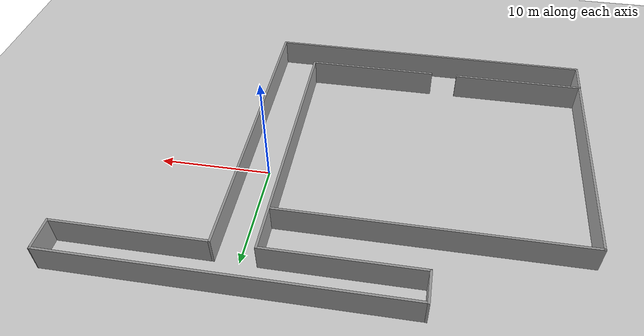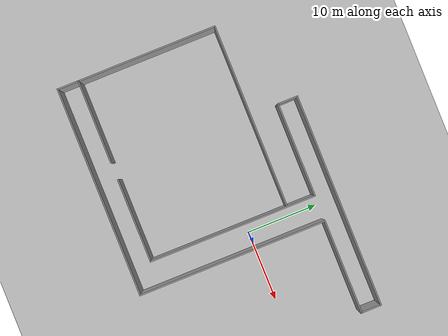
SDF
<sdf version="1.4">
 <world name="default">
  <light name="sun" type="directional">
   <pose>0 0 10 0 -0 0</pose>
   <diffuse>0.8 0.8 0.8 1</diffuse>
   <specular>0.2 0.2 0.2 1</specular>
   <attenuation>
    <range>1000</range>
    <constant>0.9</constant>
    <linear>0.01</linear>
    <quadratic>0.001</quadratic>
   </attenuation>
   <direction>-0.5 0.1 -0.9</direction>
  </light>
  <model name="ground_plane">
   <static>1</static>
   <link name="link">
    <collision name="collision">
     <geometry><plane><normal>0 0 1</normal><size>100 100</size></plane></geometry>
     <surface><friction><ode><mu>100</mu><mu2>50</mu2></ode></friction></surface>
    </collision>
    <visual name="visual">
     <cast_shadows>0</cast_shadows>
     <geometry><plane><normal>0 0 1</normal><size>100 100</size></plane></geometry>
     <material>
      <script><uri>file://media/materials/scripts/gazebo.material</uri><name>Gazebo/Grey</name></script>
     </material>
    </visual>
    <velocity_decay><linear>0</linear><angular>0</angular></velocity_decay>
   </link>
  </model>
  <physics type="ode">
   <max_step_size>0.001</max_step_size>
   <real_time_factor>1</real_time_factor>
   <real_time_update_rate>1000</real_time_update_rate>
   <gravity>0 0 -9.8</gravity>
  </physics>
  <scene><ambient>0.4 0.4 0.4 1</ambient><background>0.7 0.7 0.7 1</background><shadows>1</shadows></scene>
  <spherical_coordinates>
   <surface_model>EARTH_WGS84</surface_model>
   <latitude_deg>0</latitude_deg>
   <longitude_deg>0</longitude_deg>
   <elevation>0</elevation>
   <heading_deg>0</heading_deg>
  </spherical_coordinates>
  <model name="Project1Building">
   <link name="Wall_1">
    <collision name="Wall_1_Collision">
     <geometry><box><size>30.388 0.2 2.5</size></box></geometry>
     <pose>0 0 1.25 0 -0 0</pose>
    </collision>
    <visual name="Wall_1_Visual">
     <pose>0 0 1.25 0 -0 0</pose>
     <geometry><box><size>30.388 0.2 2.5</size></box></geometry>
     <material>
      <script><uri>file://media/materials/scripts/gazebo.material</uri><name>Gazebo/Grey</name></script>
     </material>
    </visual>
    <velocity_decay><linear>0</linear><angular>0</angular></velocity_decay>
    <pose>-9.60931 -1.082 0 0 -0 0</pose>
   </link>
   <link name="Wall_2">
    <collision name="Wall_2_Collision">
     <geometry><box><size>3 0.2 2.5</size></box></geometry>
     <pose>0 0 1.25 0 -0 0</pose>
    </collision>
    <visual name="Wall_2_Visual">
     <pose>0 0 1.25 0 -0 0</pose>
     <geometry><box><size>3 0.2 2.5</size></box></geometry>
     <material>
      <script><uri>file://media/materials/scripts/gazebo.material</uri><name>Gazebo/Grey</name></script>
     </material>
    </visual>
    <velocity_decay><linear>0</linear><angular>0</angular></velocity_decay>
    <pose>5.48485 -2.482 0 0 0 -1.57069</pose>
   </link>
   <link name="Wall_21">
    <collision name="Wall_21_Collision">
     <geometry><box><size>13.5 0.2 2.5</size></box></geometry>
     <pose>0 0 1.25 0 -0 0</pose>
    </collision>
    <visual name="Wall_21_Visual">
     <pose>0 0 1.25 0 -0 0</pose>
     <geometry><box><size>13.5 0.2 2.5</size></box></geometry>
     <material>
      <script><uri>file://media/materials/scripts/gazebo.material</uri><name>Gazebo/Grey</name></script>
     </material>
    </visual>
    <velocity_decay><linear>0</linear><angular>0</angular></velocity_decay>
    <pose>-1.16731 -3.88535 0 0 -0 3.14159</pose>
   </link>
   <link name="Wall_22">
    <collision name="Wall_22_Collision">
     <geometry><box><size>27 0.2 2.5</size></box></geometry>
     <pose>0 0 1.25 0 -0 0</pose>
    </collision>
    <visual name="Wall_22_Visual">
     <pose>0 0 1.25 0 -0 0</pose>
     <geometry><box><size>27 0.2 2.5</size></box></geometry>
     <material>
      <script><uri>file://media/materials/scripts/gazebo.material</uri><name>Gazebo/Grey</name></script>
     </material>
    </visual>
    <velocity_decay><linear>0</linear><angular>0</angular></velocity_decay>
    <pose>-7.80965 -17.2852 0 0 0 -1.57022</pose>
   </link>
   <link name="Wall_23">
    <collision name="Wall_23_Collision">
     <geometry><box><size>29.999 0.2 2.5</size></box></geometry>
     <pose>0 0 1.25 0 -0 0</pose>
    </collision>
    <visual name="Wall_23_Visual">
     <pose>0 0 1.25 0 -0 0</pose>
     <geometry><box><size>29.999 0.2 2.5</size></box></geometry>
     <material>
      <script><uri>file://media/materials/scripts/gazebo.material</uri><name>Gazebo/Grey</name></script>
     </material>
    </visual>
    <velocity_decay><linear>0</linear><angular>0</angular></velocity_decay>
    <pose>-22.7015 -30.685 0 0 -0 3.14159</pose>
   </link>
   <link name="Wall_25">
    <collision name="Wall_25_Collision">
     <geometry><box><size>3 0.2 2.5</size></box></geometry>
     <pose>0 0 1.25 0 -0 0</pose>
    </collision>
    <visual name="Wall_25_Visual">
     <pose>0 0 1.25 0 -0 0</pose>
     <geometry><box><size>3 0.2 2.5</size></box></geometry>
     <material>
      <script><uri>file://media/materials/scripts/gazebo.material</uri><name>Gazebo/Grey</name></script>
     </material>
    </visual>
    <velocity_decay><linear>0</linear><angular>0</angular></velocity_decay>
    <pose>-24.79 -2.466 0 0 0 -1.5708</pose>
   </link>
   <link name="Wall_26">
    <collision name="Wall_26_Collision">
     <geometry><box><size>13.5005 0.2 2.5</size></box></geometry>
     <pose>0 0 1.25 0 -0 0</pose>
    </collision>
    <visual name="Wall_26_Visual">
     <pose>0 0 1.25 0 -0 0</pose>
     <geometry><box><size>13.5005 0.2 2.5</size></box></geometry>
     <material>
      <script><uri>file://media/materials/scripts/gazebo.material</uri><name>Gazebo/Grey</name></script>
     </material>
    </visual>
    <velocity_decay><linear>0</linear><angular>0</angular></velocity_decay>
    <pose>-18.1398 -3.8659 0 0 -0 1.5e-05</pose>
   </link>
   <link name="Wall_28">
    <collision name="Wall_28_Collision">
     <geometry><box><size>24 0.2 2.5</size></box></geometry>
     <pose>0 0 1.25 0 -0 0</pose>
    </collision>
    <visual name="Wall_28_Visual">
     <pose>0 0 1.25 0 -0 0</pose>
     <geometry><box><size>24 0.2 2.5</size></box></geometry>
     <material>
      <script><uri>file://media/materials/scripts/gazebo.material</uri><name>Gazebo/Grey</name></script>
     </material>
    </visual>
    <velocity_decay><linear>0</linear><angular>0</angular></velocity_decay>
    <pose>-11.4981 -15.7843 0 0 0 -1.5708</pose>
   </link>
   <link name="Wall_29">
    <collision name="Wall_29_Collision">
     <geometry><box><size>12 0.2 2.5</size></box></geometry>
     <pose>0 0 1.25 0 -0 0</pose>
    </collision>
    <visual name="Wall_29_Visual">
     <pose>0 0 1.25 0 -0 0</pose>
     <geometry><box><size>12 0.2 2.5</size></box></geometry>
     <material>
      <script><uri>file://media/materials/scripts/gazebo.material</uri><name>Gazebo/Grey</name></script>
     </material>
    </visual>
    <velocity_decay><linear>0</linear><angular>0</angular></velocity_decay>
    <pose>-17.3981 -27.6843 0 0 -0 3.14159</pose>
   </link>
   <link name="Wall_32">
    <collision name="Wall_32_Collision">
     <geometry><box><size>3.2 0.2 2.5</size></box></geometry>
     <pose>0 0 1.25 0 -0 0</pose>
    </collision>
    <visual name="Wall_32_Visual">
     <pose>0 0 1.25 0 -0 0</pose>
     <geometry><box><size>3.2 0.2 2.5</size></box></geometry>
     <material>
      <script><uri>file://media/materials/scripts/gazebo.material</uri><name>Gazebo/Grey</name></script>
     </material>
    </visual>
    <velocity_decay><linear>0</linear><angular>0</angular></velocity_decay>
    <pose>-37.698 -29.185 0 0 -0 1.5708</pose>
   </link>
   <link name="Wall_33">
    <collision name="Wall_33_Collision">
     <geometry><box><size>11.9999 0.2 2.5</size></box></geometry>
     <pose>0 0 1.25 0 -0 0</pose>
    </collision>
    <visual name="Wall_33_Visual">
     <pose>0 0 1.25 0 -0 0</pose>
     <geometry><box><size>11.9999 0.2 2.5</size></box></geometry>
     <material>
      <script><uri>file://media/materials/scripts/gazebo.material</uri><name>Gazebo/Grey</name></script>
     </material>
    </visual>
    <velocity_decay><linear>0</linear><angular>0</angular></velocity_decay>
    <pose>-31.798 -27.685 0 0 -0 0</pose>
   </link>
   <link name="Wall_35">
    <collision name="Wall_35_Collision">
     <geometry><box><size>20 0.2 2.5</size></box></geometry>
     <pose>0 0 1.25 0 -0 0</pose>
    </collision>
    <visual name="Wall_35_Visual">
     <pose>0 0 1.25 0 -0 0</pose>
     <geometry><box><size>20 0.2 2.5</size></box></geometry>
     <material>
      <script><uri>file://media/materials/scripts/gazebo.material</uri><name>Gazebo/Grey</name></script>
     </material>
    </visual>
    <velocity_decay><linear>0</linear><angular>0</angular></velocity_decay>
    <pose>-37.6833 -17.7754 0 0 -0 1.5708</pose>
   </link>
   <link name="Wall_36">
    <collision name="Wall_36_Collision">
     <geometry><box><size>26.3207 0.2 2.5</size></box></geometry>
     <pose>0 0 1.25 0 -0 0</pose>
    </collision>
    <visual name="Wall_36_Visual">
     <pose>0 0 1.25 0 -0 0</pose>
     <geometry><box><size>26.3207 0.2 2.5</size></box></geometry>
     <material>
      <script><uri>file://media/materials/scripts/gazebo.material</uri><name>Gazebo/Grey</name></script>
     </material>
    </visual>
    <velocity_decay><linear>0</linear><angular>0</angular></velocity_decay>
    <pose>-24.6233 -7.87538 0 0 -0 0</pose>
   </link>
   <static>1</static>
   <pose>9.90846 13.9444 0 0 -0 0</pose>
  </model>
 </world>
</sdf>
